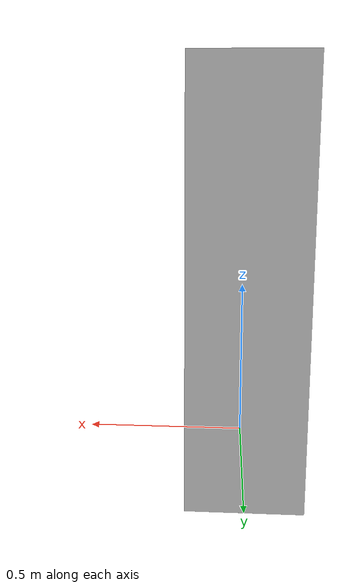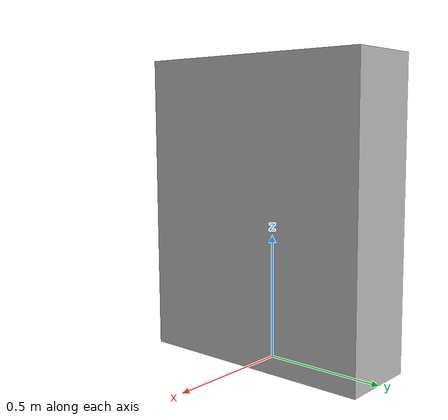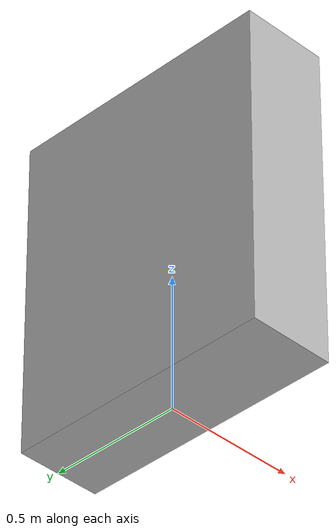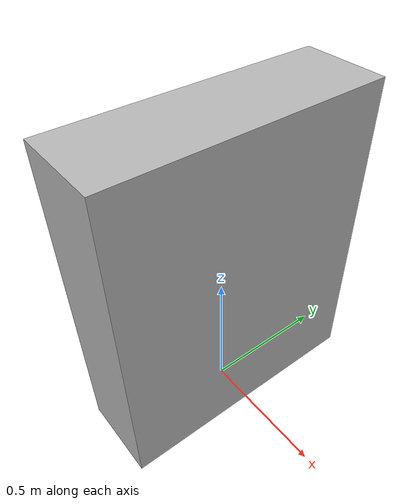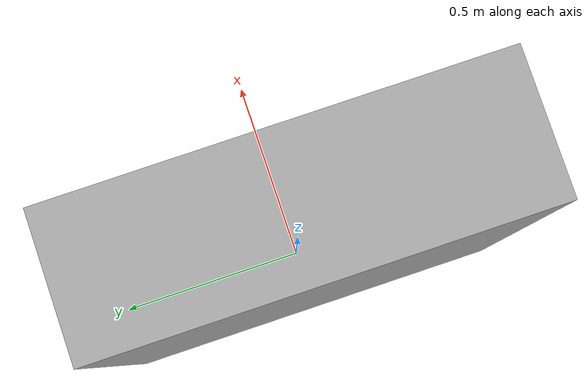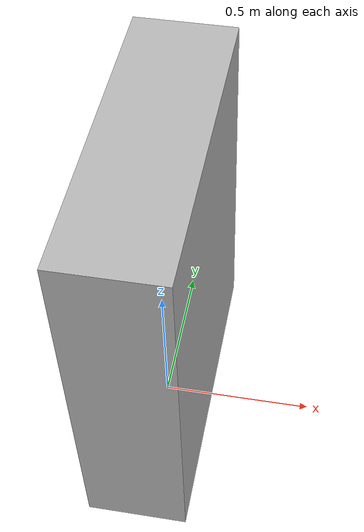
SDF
<?xml version="1.0"?>
<sdf version="1.6">
  <model name="rwc2013/book_case">
    <link name="1_link">
      <collision name="1_col">
        <geometry>
          <box>
            <size>0.32 1.0 1.2</size>
          </box>
        </geometry>
      </collision>
      <visual name="1_vis">
        <geometry>
          <box>
            <size>0.32 1.0 1.2</size>
          </box>
        </geometry>
      </visual>
      <pose>0.0 0.0 0.6 0 0 0</pose>
    </link>
    <static>true</static>
  </model>
</sdf>
